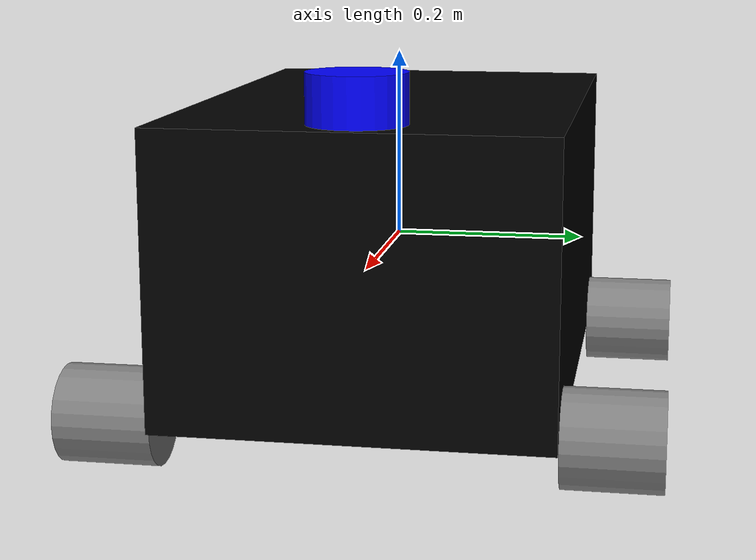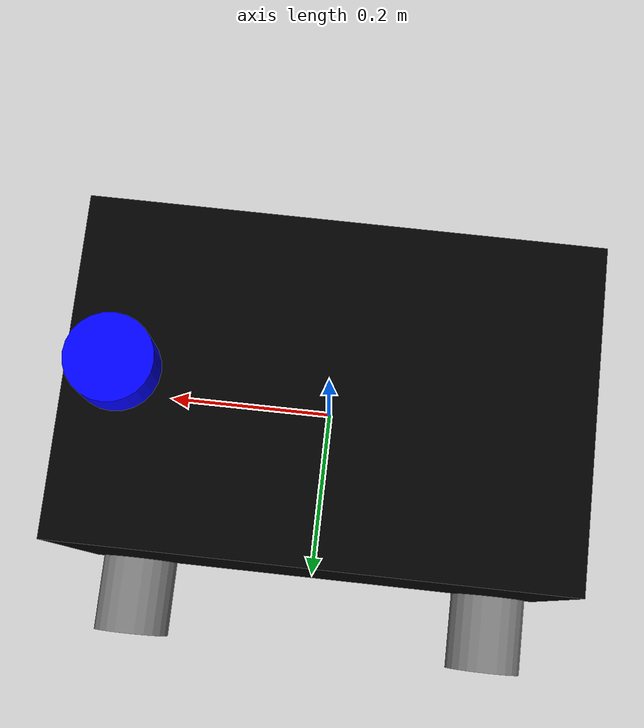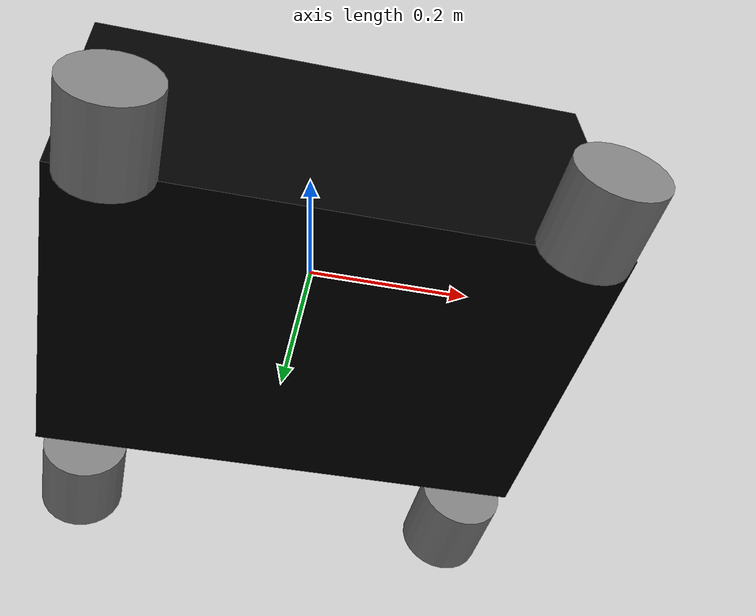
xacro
<?xml version="1.0"?>
<robot xmlns:xacro="http://www.ros.org/wiki/xacro"  name="diff_drive_bot" >

<!-- Body dimensions-->
<xacro:property name="length" value="0.6"/>
<xacro:property name="bred" value="0.4"/>
<xacro:property name="height" value="0.3"/>
<!-- Wheel dims -->
<xacro:property name="wheel_radius" value="0.05"/>
<xacro:property name="wheel_length" value="0.1"/>
<xacro:property name="wheel_z" value="-0.15"/>

<!--Material density-->
<xacro:property name="body_density" value="2710.0"/>
<xacro:property name="wheel_density" value="2710.0"/>

<!--Pi constant-->
<xacro:property name="pi_const" value="3.14159265"/>

<!--Robot body and wheel mass-->
<xacro:property name="body_mass" value="${body_density*length*bred*height}"/>
<xacro:property name="wheel_mass" value="${wheel_density*pi_const*wheel_radius*wheel_radius*wheel_length}"/>

<!-- Moment of inertia of the wheel -->
<xacro:property name="Iz_wheel" value="${0.5*wheel_mass*wheel_radius*wheel_length}"/>
<xacro:property name="I_wheel" value="${(1.0/12.0)*wheel_mass*(3.0*wheel_radius*wheel_radius + wheel_length*wheel_length)}"/>

<!-- macro defining inertial section of the wheel-->
<xacro:macro name = "inertial_wheel">
    <inertial>
    <origin rpy = '0 0 0' xyz= '0 0 0'/>
    <mass value = '${wheel_mass}'/>
    <inertia ixx = "${I_wheel}" ixy="0.0" ixz = "0.0" iyy = "${I_wheel}" iyz="0" izz="${Iz_wheel}"/>
    </inertial>
</xacro:macro>
<xacro:macro name="inertial_cylinder" params="mass length radius">
  <inertial>
    <mass value="${mass}"/>
    <inertia ixx="${(1/12) * mass * (3*radius*radius + length*length)}" ixy="0.0" ixz="0.0"
                    iyy="${(1/12) * mass * (3*radius*radius + length*length)}" iyz="0.0"
                    izz="${(1/2) * mass * (radius*radius)}" />
  </inertial>
</xacro:macro>

<!--control driver with gazebo-->
<xacro:include filename="$(find bot)/urdf/bot.gazebo"/>

<!-- footprint link -->

<!-- Body of the robot -->
<link name="base_link">
    <visual>
        <geometry>
          <box size="${length} ${bred} ${height}"/>
        </geometry>
        <material name="black">
            <color rgba="0 0 0 1"/>
        </material>
    </visual>
    <collision>
        <geometry>
            <box size="${length} ${bred} ${height}"/>
        </geometry>
        <origin rpy="0 0 0" xyz="0 0 0"/>
    </collision>
    <inertial>
        <mass value = "${body_mass}"/>
        <inertia
            ixx = "${(1.0/12.0)*body_mass*(bred*bred + height*height)}" ixy = "0"
            ixz = "0" iyy = "${(1.0/12.0)*body_mass*(length*length + height*height)}"
            iyz ="0"
            izz = "${(1.0/12.0)*body_mass*(bred*bred + length*length)}"/>
    </inertial>
</link>

<!-- Joint Definition for right back wheel -->
  <joint name="right_wheel_joint_back" type="continuous">
    <parent link="base_link"/>
    <child link="right_wheel_back"/>
    <origin xyz="${-length/2+1.2*wheel_radius} ${-bred/2 - wheel_length/2} ${wheel_z}" rpy="0 0 0"/>
    <axis xyz="0 1 0"/>
    <limit effort="1000" velocity="1000"/>
    <dynamics damping="1.0" friction="1.0"/>
  </joint>

  <!--  right back wheel -->
  <link name="right_wheel_back">
    <visual>
    <origin rpy = '1.570795 0 0' xyz = '0 0 0'/>
      <geometry>
        <cylinder radius="${wheel_radius}" length="${wheel_length}"/> <!-- 100mm diameter wheel -->
      </geometry>
      <material name="grey">
      <color rgba = '0.5 0.5 0.5 1'/>
      </material>
    </visual>
    <collision>
      <geometry>
        <cylinder radius="${wheel_radius}" length="${wheel_length}"/>
      </geometry>
      <origin rpy = '1.570795 0 0' xyz = '0 0 0'/>
    </collision>
    <xacro:inertial_wheel/>
  </link>

<!-- Joint Definition for left back wheel -->
  <joint name="left_wheel_joint_back" type="continuous">
    <parent link="base_link"/>
    <child link="left_wheel_back"/>
    <origin xyz="${-length/2+1.2*wheel_radius} ${bred/2 + wheel_length/2} ${wheel_z}" rpy="0 0 0"/>
    <axis xyz="0 1 0"/>
    <limit effort="1000" velocity="1000"/>
    <dynamics damping="1.0" friction="1.0"/>
  </joint>

  <!--  left back wheel -->
  <link name="left_wheel_back">
    <visual>
    <origin rpy = '1.570795 0 0' xyz = '0 0 0'/>
      <geometry>
        <cylinder radius="${wheel_radius}" length="${wheel_length}"/> <!-- 100mm diameter wheel -->
      </geometry>
      <material name="grey">
      <color rgba = '0.5 0.5 0.5 1'/>
      </material>
    </visual>
    <collision>
      <geometry>
        <cylinder radius="${wheel_radius}" length="${wheel_length}"/>
      </geometry>
      <origin rpy = '1.570795 0 0' xyz = '0 0 0'/>
    </collision>
    <xacro:inertial_wheel/>
  </link>

<!-- Joint Definition for right front wheel -->
  <joint name="right_wheel_joint_front" type="continuous">
    <parent link="base_link"/>
    <child link="right_wheel_front"/>
    <origin xyz="${length/2-1.2*wheel_radius} ${-bred/2 - wheel_length/2} ${wheel_z}" rpy="0 0 0"/>
    <axis xyz="0 1 0"/>
    <limit effort="1000" velocity="1000"/>
    <dynamics damping="1.0" friction="1.0"/>
  </joint>

  <!--  right front wheel -->
  <link name="right_wheel_front">
    <visual>
    <origin rpy = '1.570795 0 0' xyz = '0 0 0'/>
      <geometry>
        <cylinder radius="${wheel_radius}" length="${wheel_length}"/> <!-- 100mm diameter wheel -->
      </geometry>
      <material name="grey">
      <color rgba = '0.5 0.5 0.5 1'/>
      </material>
    </visual>
    <collision>
      <geometry>
        <cylinder radius="${wheel_radius}" length="${wheel_length}"/>
      </geometry>
      <origin rpy = '1.570795 0 0' xyz = '0 0 0'/>
    </collision>
    <xacro:inertial_wheel/>
  </link>

  <!-- Joint Definition for left front wheel -->
  <joint name="left_wheel_joint_front" type="continuous">
    <parent link="base_link"/>
    <child link="left_wheel_front"/>
    <origin xyz="${length/2-1.2*wheel_radius} ${bred/2 + wheel_length/2} ${wheel_z}" rpy="0 0 0"/>
    <axis xyz="0 1 0"/>
    <limit effort="1000" velocity="1000"/>
    <dynamics damping="1.0" friction="1.0"/>
  </joint>

  <!--  left front wheel -->
  <link name="left_wheel_front">
    <visual>
    <origin rpy = '1.570795 0 0' xyz = '0 0 0'/>
      <geometry>
        <cylinder radius="${wheel_radius}" length="${wheel_length}"/> <!-- 100mm diameter wheel -->
      </geometry>
      <material name="grey">
      <color rgba = '0.5 0.5 0.5 1'/>
      </material>
    </visual>
    <collision>
      <geometry>
        <cylinder radius="${wheel_radius}" length="${wheel_length}"/>
      </geometry>
      <origin rpy = '1.570795 0 0' xyz = '0 0 0'/>
    </collision>
    <xacro:inertial_wheel/>
  </link>
  <joint name="hokuyo_joint" type="fixed">
    <axis xyz="0 1 0" />
    <origin xyz="0.24 0 0.175" rpy="0 0 0"/>
    <parent link="base_link"/>
    <child link="hokuyo"/>
  </joint>

  <link name="hokuyo">
    <collision>
      <origin xyz="0 0 0" rpy="0 0 0"/>
      <geometry>
    <box size="0.1 0.1 0.1"/>
      </geometry>
    </collision>

    <visual>
    <geometry>
      <cylinder radius="0.05" length="0.05"/>
    </geometry>
    <material name="blue">
      <color rgba="0 0 1 1"/>
    </material>
  </visual>

    <inertial>
      <mass value="1e-5" />
      <origin xyz="0 0 0" rpy="0 0 0"/>
      <inertia ixx="1e-6" ixy="0" ixz="0" iyy="1e-6" iyz="0" izz="1e-6" />
    </inertial>
  </link>
</robot>
